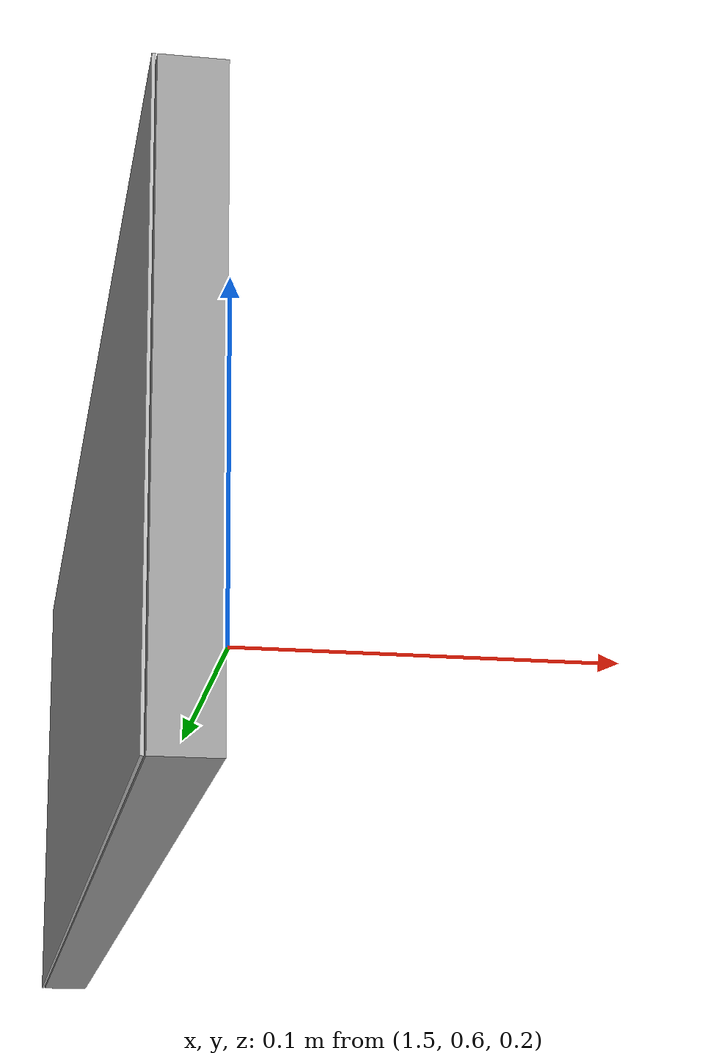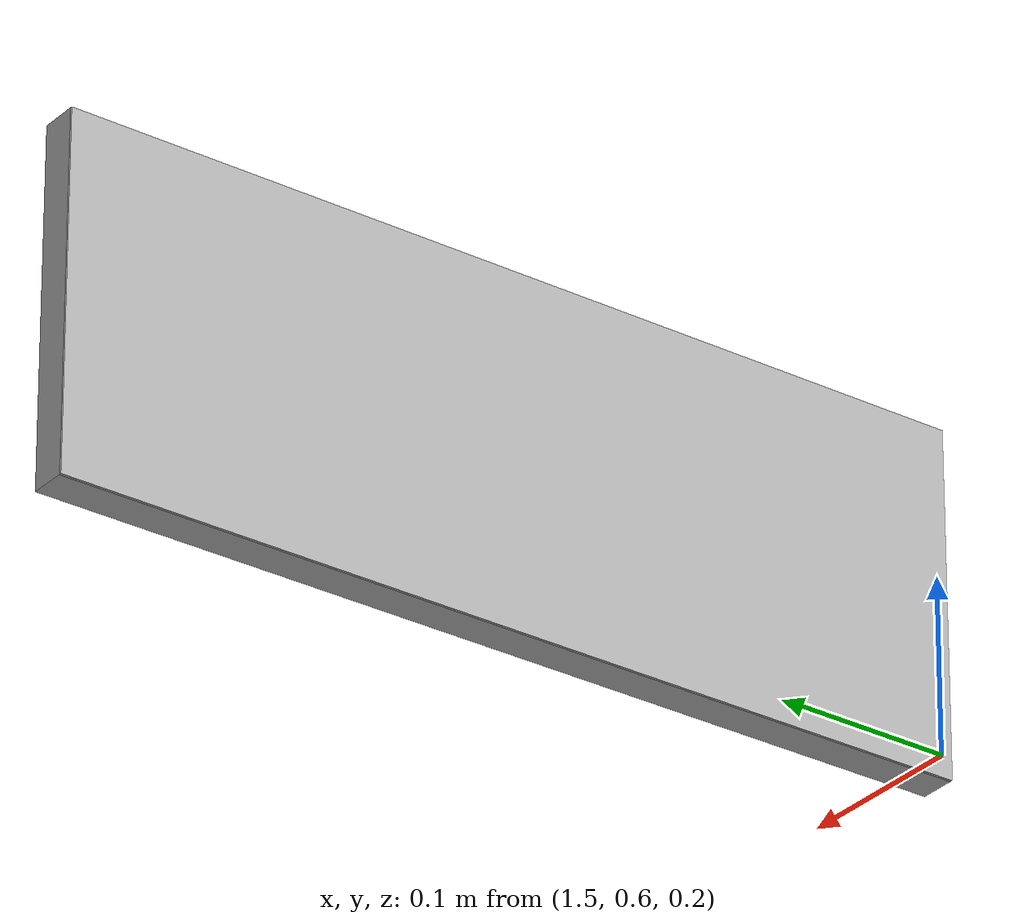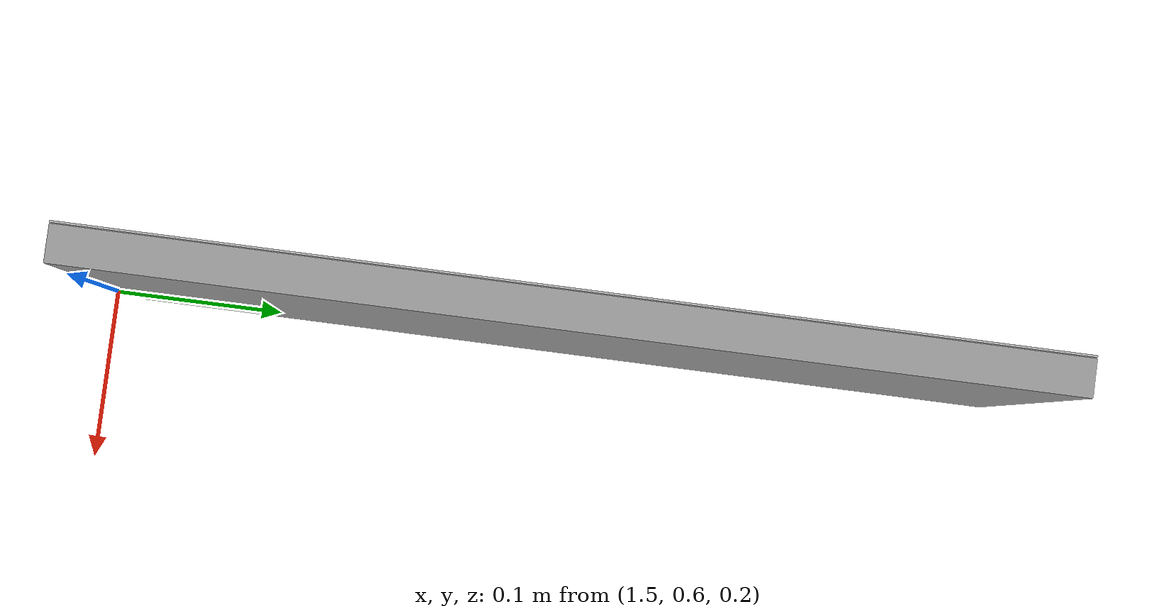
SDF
<?xml version='1.0'?>
<sdf version='1.7'>
  <model name='4'>
    <static>true</static>

    <pose>1.491094 0.872033 0.272904 0 0 -1.570796</pose>

    <link name='link_0'>
      <pose>0 0 0 0 0 -1.57106</pose>

      <visual name='visual'>
        <geometry>
          <box>
            <size>0.019959 0.522549 0.197075</size>
          </box>
        </geometry>
        <material>
          <script>
            <uri>file://media/materials/scripts/gazebo.material</uri>
            <name>Gazebo/Grey</name>
          </script>
        </material>
      </visual>

      <visual name='signboard_visual'>
        <pose>0.011 0 0 0 0 0</pose>
        <geometry>
          <box>
            <size>0.001 0.522549 0.197075</size>
          </box>
        </geometry>
        <material>
          <script>
            <uri>model://4/materials/scripts</uri>
            <uri>model://4/materials/textures</uri>
            <name>Model_4/Texture</name>
          </script>
        </material>
      </visual>

    </link>
    <allow_auto_disable>1</allow_auto_disable>
  </model>
</sdf>
